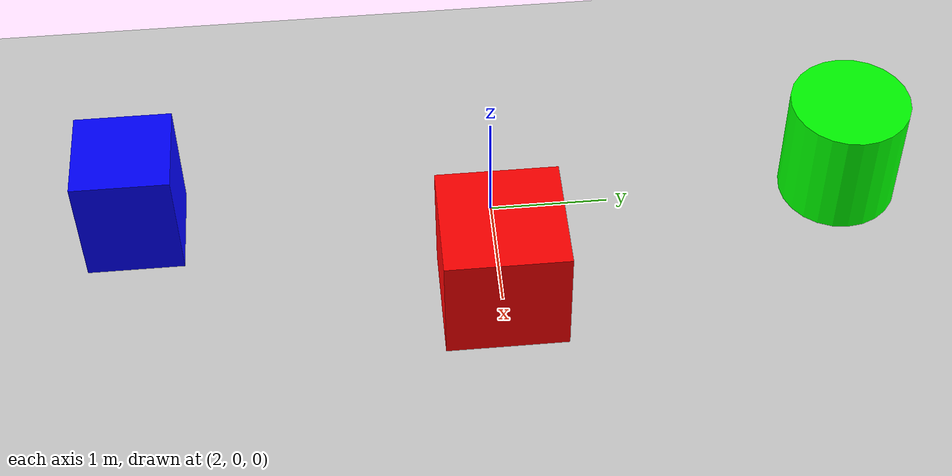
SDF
<?xml version="1.0" ?>
<sdf version="1.6">
  <world name="simple_obstacles">
    <!-- Ground Plane -->
    <model name="ground_plane">
      <static>true</static>
      <link name="link">
        <collision name="collision">
          <geometry>
            <plane>
              <normal>0 0 1</normal>
              <size>100 100</size>
            </plane>
          </geometry>
        </collision>
        <visual name="visual">
          <geometry>
            <plane>
              <normal>0 0 1</normal>
              <size>100 100</size>
            </plane>
          </geometry>
          <material>
            <ambient>0.8 0.8 0.8 1</ambient>
          </material>
        </visual>
      </link>
    </model>

    <!-- Sun -->
    <light type="directional" name="sun">
      <cast_shadows>true</cast_shadows>
      <pose>0 0 10 0 0 0</pose>
      <diffuse>0.8 0.8 0.8 1</diffuse>
      <specular>0.1 0.1 0.1 1</specular>
      <attenuation>
        <range>1000</range>
        <constant>0.9</constant>
        <linear>0.01</linear>
        <quadratic>0.001</quadratic>
      </attenuation>
      <direction>-0.5 0.1 -0.9</direction>
    </light>

    <!-- Obstacle 1 - Red Box -->
    <model name="red_box">
      <pose>3 0 0.5 0 0 0</pose>
      <static>true</static>
      <link name="link">
        <collision name="collision">
          <geometry>
            <box>
              <size>1 1 1</size>
            </box>
          </geometry>
        </collision>
        <visual name="visual">
          <geometry>
            <box>
              <size>1 1 1</size>
            </box>
          </geometry>
          <material>
            <ambient>1 0 0 1</ambient>
            <diffuse>1 0 0 1</diffuse>
          </material>
        </visual>
      </link>
    </model>

    <!-- Obstacle 2 - Green Cylinder -->
    <model name="green_cylinder">
      <pose>2 3 0.5 0 0 0</pose>
      <static>true</static>
      <link name="link">
        <collision name="collision">
          <geometry>
            <cylinder>
              <radius>0.5</radius>
              <length>1</length>
            </cylinder>
          </geometry>
        </collision>
        <visual name="visual">
          <geometry>
            <cylinder>
              <radius>0.5</radius>
              <length>1</length>
            </cylinder>
          </geometry>
          <material>
            <ambient>0 1 0 1</ambient>
            <diffuse>0 1 0 1</diffuse>
          </material>
        </visual>
      </link>
    </model>

    <!-- Obstacle 3 - Blue Box -->
    <model name="blue_box">
      <pose>2 -3 0.5 0 0 0</pose>
      <static>true</static>
      <link name="link">
        <collision name="collision">
          <geometry>
            <box>
              <size>0.8 0.8 1</size>
            </box>
          </geometry>
        </collision>
        <visual name="visual">
          <geometry>
            <box>
              <size>0.8 0.8 1</size>
            </box>
          </geometry>
          <material>
            <ambient>0 0 1 1</ambient>
            <diffuse>0 0 1 1</diffuse>
          </material>
        </visual>
      </link>
    </model>

  </world>
</sdf>
